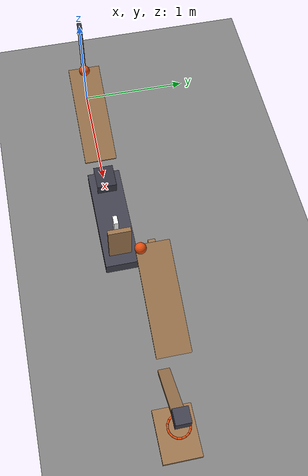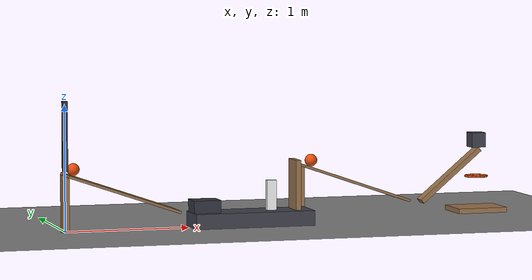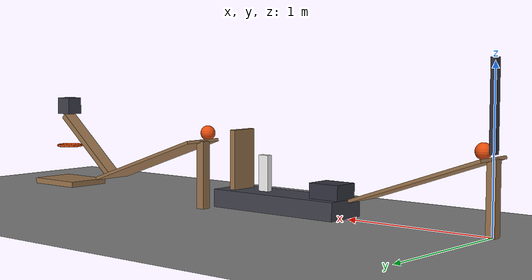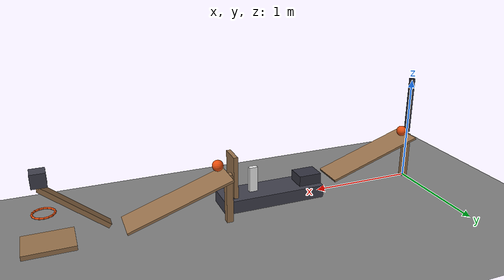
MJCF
<mujoco model="pendulum_ramp_relay_best_effort">
  <compiler angle="radian"/>
  <option timestep="0.002"/>
  <worldbody>
    <geom name="floor" type="plane" size="12 12 0.1" friction="0.68 0 0"/>
    <body name="ramp1">
      <geom name="ramp1_deck" type="box" pos="0.449121 0 0.29519" size="0.475 0.15 0.01" euler="0 0.331613 0" friction="0.68 0 0" solref="0.01 1" rgba="0.6 0.45 0.3 1"/>
      <geom name="ramp1_leg" type="box" pos="0 0 0.224917" size="0.03 0.03 0.224917" friction="0.68 0 0" solref="0.01 1" rgba="0.6 0.45 0.3 1"/>
    </body>
    <body name="ball1" pos="0.06681 0 0.490287">
      <freejoint/>
      <geom name="ball1" type="sphere" pos="0 0 0" size="0.05" mass="0.2" condim="6" friction="0.68 0 0" solref="0.01 1" rgba="0.9 0.3 0.05 1"/>
    </body>
    <body name="pendulum1" pos="0.00181002 0 1.02529">
      <joint name="pendulum_hinge" type="hinge" pos="0 0 0" axis="0 1 0" limited="true" range="-0.261799 0.959931" damping="0.04"/>
      <geom name="pendulum1" type="box" pos="0 0 -0.275" size="0.02 0.02 0.275" mass="0.4" friction="0.68 0 0" solref="0.01 1" rgba="0.2 0.2 0.25 1"/>
    </body>
    <body name="cart track">
      <geom name="cart track" type="box" pos="1.5115 0 0.06" size="0.49 0.15 0.06" friction="0.68 0 0" solref="0.01 1" rgba="0.25 0.25 0.3 1"/>
    </body>
    <body name="cart1" pos="1.1315 0 0.17">
      <freejoint/>
      <geom name="cart1" type="box" pos="0 0 0" size="0.11 0.09 0.05" mass="0.5" friction="0.68 0 0" solref="0.01 1" rgba="0.2 0.2 0.25 1"/>
    </body>
    <body name="domino1" pos="1.6815 0 0.24">
      <freejoint/>
      <geom name="domino1" type="box" pos="0 0 0" size="0.04 0.02 0.12" mass="0.25" friction="0.68 0 0" solref="0.01 1" rgba="0.95 0.95 0.95 1"/>
    </body>
    <body name="flap1" pos="1.8815 0 0.12">
      <joint name="flap_hinge" type="hinge" pos="0 0 0" axis="0 1 0" limited="true" range="0 1.13446" damping="0.04"/>
      <geom name="flap1" type="box" pos="0 0 0.2" size="0.02 0.1 0.2" mass="0.3" friction="0.68 0 0" solref="0.01 1" rgba="0.6 0.45 0.3 1"/>
    </body>
    <body name="ramp2">
      <geom name="ramp2_deck" type="box" pos="2.45412 0.255 0.29519" size="0.475 0.15 0.01" euler="0 0.331613 0" friction="0.68 0 0" solref="0.01 1" rgba="0.6 0.45 0.3 1"/>
      <geom name="ramp2_leg" type="box" pos="2.005 0.255 0.224917" size="0.03 0.03 0.224917" friction="0.68 0 0" solref="0.01 1" rgba="0.6 0.45 0.3 1"/>
    </body>
    <body name="ball2" pos="2.06235 0.145 0.493543">
      <freejoint/>
      <geom name="ball2" type="sphere" pos="0 0 0" size="0.05" mass="0.2" condim="6" friction="0.68 0 0" solref="0.01 1" rgba="0.9 0.3 0.05 1"/>
    </body>
    <body name="seesaw1" pos="3.25546 0.145 0.338906">
      <joint name="seesaw_hinge" type="hinge" pos="0 0 0" axis="0 1 0" limited="true" range="-0.698132 0" damping="0.04"/>
      <geom name="seesaw1" type="box" pos="-5e-09 0 -5e-09" size="0.325 0.05 0.02" euler="0 -0.698132 0" mass="0.55" friction="0.68 0 0" solref="0.01 1" rgba="0.6 0.45 0.3 1"/>
    </body>
    <body name="block1" pos="3.49157 0.145 0.623133">
      <freejoint/>
      <geom name="block1" type="box" pos="0 0 0" size="0.06 0.06 0.06" mass="0.35" friction="0.68 0 0" solref="0.01 1" rgba="0.25 0.25 0.3 1"/>
    </body>
    <body name="ring1">
      <geom name="ring1_00" type="capsule" size="0.008" fromto="3.57957 0.145 0.323133 3.57287 0.178676 0.323133" friction="0.68 0 0" solref="0.01 1" rgba="0.9 0.3 0.05 1"/>
      <geom name="ring1_01" type="capsule" size="0.008" fromto="3.57287 0.178676 0.323133 3.5538 0.207225 0.323133" friction="0.68 0 0" solref="0.01 1" rgba="0.9 0.3 0.05 1"/>
      <geom name="ring1_02" type="capsule" size="0.008" fromto="3.5538 0.207225 0.323133 3.52525 0.226301 0.323133" friction="0.68 0 0" solref="0.01 1" rgba="0.9 0.3 0.05 1"/>
      <geom name="ring1_03" type="capsule" size="0.008" fromto="3.52525 0.226301 0.323133 3.49157 0.233 0.323133" friction="0.68 0 0" solref="0.01 1" rgba="0.9 0.3 0.05 1"/>
      <geom name="ring1_04" type="capsule" size="0.008" fromto="3.49157 0.233 0.323133 3.4579 0.226301 0.323133" friction="0.68 0 0" solref="0.01 1" rgba="0.9 0.3 0.05 1"/>
      <geom name="ring1_05" type="capsule" size="0.008" fromto="3.4579 0.226301 0.323133 3.42935 0.207225 0.323133" friction="0.68 0 0" solref="0.01 1" rgba="0.9 0.3 0.05 1"/>
      <geom name="ring1_06" type="capsule" size="0.008" fromto="3.42935 0.207225 0.323133 3.41027 0.178676 0.323133" friction="0.68 0 0" solref="0.01 1" rgba="0.9 0.3 0.05 1"/>
      <geom name="ring1_07" type="capsule" size="0.008" fromto="3.41027 0.178676 0.323133 3.40357 0.145 0.323133" friction="0.68 0 0" solref="0.01 1" rgba="0.9 0.3 0.05 1"/>
      <geom name="ring1_08" type="capsule" size="0.008" fromto="3.40357 0.145 0.323133 3.41027 0.111324 0.323133" friction="0.68 0 0" solref="0.01 1" rgba="0.9 0.3 0.05 1"/>
      <geom name="ring1_09" type="capsule" size="0.008" fromto="3.41027 0.111324 0.323133 3.42935 0.0827746 0.323133" friction="0.68 0 0" solref="0.01 1" rgba="0.9 0.3 0.05 1"/>
      <geom name="ring1_10" type="capsule" size="0.008" fromto="3.42935 0.0827746 0.323133 3.4579 0.0636986 0.323133" friction="0.68 0 0" solref="0.01 1" rgba="0.9 0.3 0.05 1"/>
      <geom name="ring1_11" type="capsule" size="0.008" fromto="3.4579 0.0636986 0.323133 3.49157 0.057 0.323133" friction="0.68 0 0" solref="0.01 1" rgba="0.9 0.3 0.05 1"/>
      <geom name="ring1_12" type="capsule" size="0.008" fromto="3.49157 0.057 0.323133 3.52525 0.0636986 0.323133" friction="0.68 0 0" solref="0.01 1" rgba="0.9 0.3 0.05 1"/>
      <geom name="ring1_13" type="capsule" size="0.008" fromto="3.52525 0.0636986 0.323133 3.5538 0.0827746 0.323133" friction="0.68 0 0" solref="0.01 1" rgba="0.9 0.3 0.05 1"/>
      <geom name="ring1_14" type="capsule" size="0.008" fromto="3.5538 0.0827746 0.323133 3.57287 0.111324 0.323133" friction="0.68 0 0" solref="0.01 1" rgba="0.9 0.3 0.05 1"/>
      <geom name="ring1_15" type="capsule" size="0.008" fromto="3.57287 0.111324 0.323133 3.57957 0.145 0.323133" friction="0.68 0 0" solref="0.01 1" rgba="0.9 0.3 0.05 1"/>
    </body>
    <body name="door1" pos="3.28157 0.145 0.0531328">
      <joint name="door_hinge" type="hinge" pos="0 0 0" axis="0 1 0" limited="true" range="0 1.13446" damping="0.04"/>
      <geom name="door1" type="box" pos="0.21 0 0" size="0.21 0.16 0.02" mass="0.45" friction="0.68 0 0" solref="0.01 1" rgba="0.6 0.45 0.3 1"/>
    </body>
  </worldbody>
  <keyframe>
    <key name="start" qpos="0.06681 0 0.490287 1 0 0 0 0.959931 1.1315 0 0.17 1 0 0 0 1.6815 0 0.24 1 0 0 0 0 2.06235 0.145 0.493543 1 0 0 0 0 3.49157 0.145 0.623133 1 0 0 0 0" qvel="0 0 0 0 0 0 0 0 0 0 0 0 0 0 0 0 0 0 0 0 0 0 0 0 0 0 0 0 0 0 0 0 0 0"/>
  </keyframe>
</mujoco>
